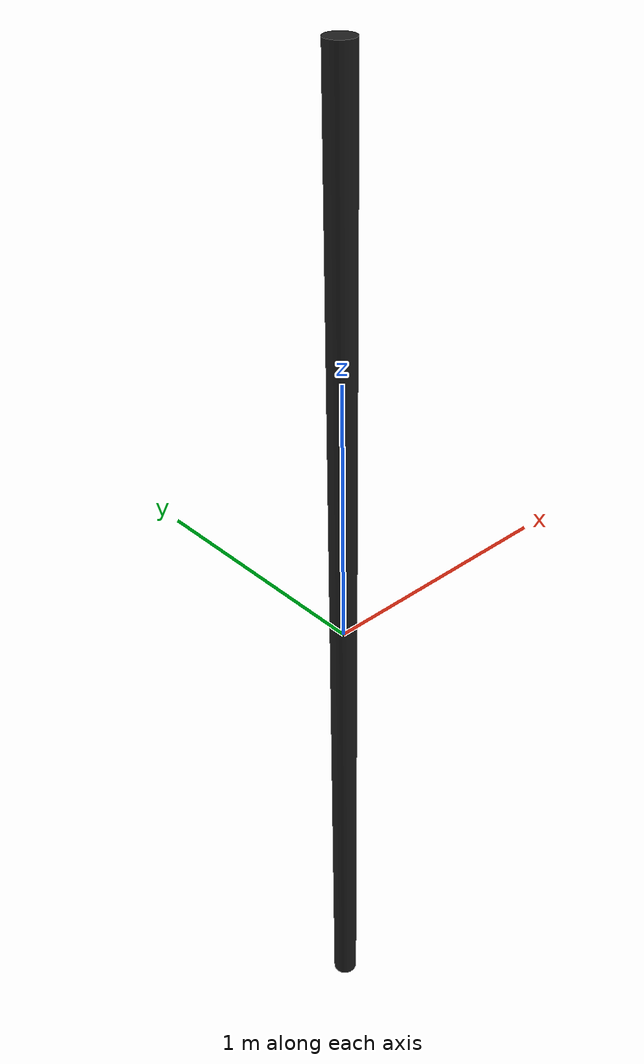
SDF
<?xml version="1.0" ?>
<sdf version="1.6">
  <model name="my_model">
    <pose>0 0 0 0 0 0</pose>
    <static>true</static>
    <link name="stick">

      <visual name="visual">
        <geometry>
          <cylinder>
            <length>4.0</length>
            <radius>0.05</radius>
          </cylinder>
        </geometry>
        <material>
          <script>
            <name>Gazebo/Black</name>
            <uri>file://media/materials/scripts/gazebo.material</uri>
          </script>
        </material>
      </visual>

      <sensor name='camera' type='camera'>
        <update_rate>30</update_rate>
        <camera name='head'>
          <pose frame=''>0 0 0 0 0 0</pose>
          <horizontal_fov>1.39626</horizontal_fov>
          <image>
            <width>360</width>
            <height>720</height>
            <format>R8G8B8</format>
          </image>
          <clip>
            <near>0.02</near>
            <far>300</far>
          </clip>
          <noise>
            <type>gaussian</type>
            <mean>0</mean>
            <stddev>0.007</stddev>
          </noise>
        </camera>
        <plugin name='gazebo_camera' filename='libgazebo_ros_camera.so'>
          <alwaysOn>1</alwaysOn>
          <updateRate>0.0</updateRate>
          <cameraName>inspect_camera</cameraName>
          <imageTopicName>inspect_camera</imageTopicName>
          <cameraInfoTopicName>inspect_camera_info</cameraInfoTopicName>
          <frameName>camera_link</frameName>
          <hackBaseline>0.07</hackBaseline>
          <distortionK1>0.0</distortionK1>
          <distortionK2>0.0</distortionK2>
          <distortionK3>0.0</distortionK3>
          <distortionT1>0.0</distortionT1>
          <distortionT2>0.0</distortionT2>
        </plugin>
        <pose frame=''>2 0 1.5 0 0 3.14</pose>
      </sensor>
    </link>

  </model>
</sdf>
